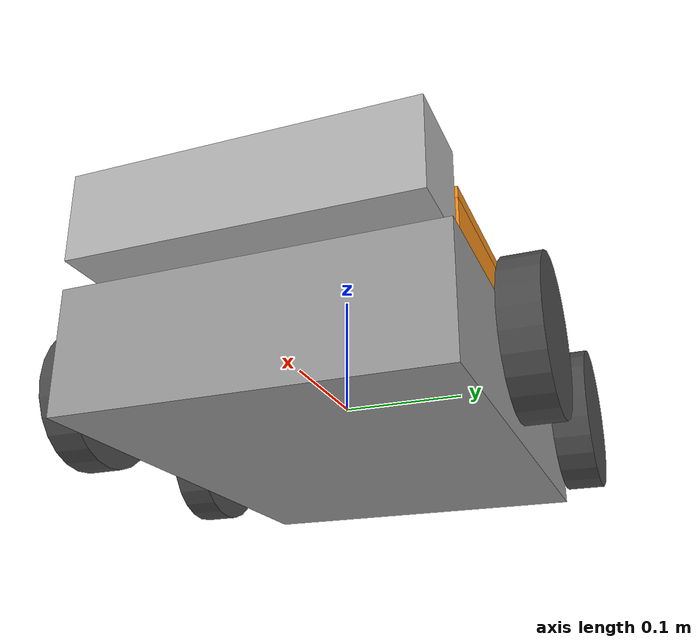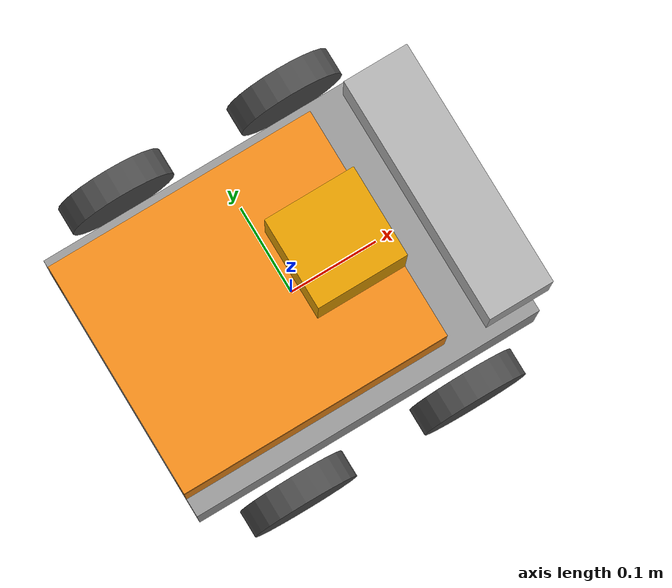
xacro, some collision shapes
<?xml version='1.0'?>

<robot name="my_robot" xmlns:xacro="http://www.ros.org/wiki/xacro">

  <xacro:include filename="$(find my_robot)/urdf/my_robot.gazebo" />

  <link name="robot_footprint"></link>

  <joint name="robot_footprint_joint" type="fixed">
    <origin xyz="0 0 0" rpy="0 0 0" />
    <parent link="robot_footprint"/>
    <child link="chassis" />
  </joint>

  <link name='chassis'>
    <pose>0 0 0.07 0 0 0</pose>

    <inertial>
      <mass value="30"/>
      <origin xyz="0.0 0 0" rpy=" 0 0 0"/>
      <inertia
          ixx="0.1" ixy="0" ixz="0"
          iyy="0.1" iyz="0"
          izz="0.1"
      />
    </inertial>

    <collision name='chassis'>
      <origin xyz="0 0 0" rpy=" 0 0 0"/>
      <geometry>
        <box size=".4 .3 .1"/>
      </geometry>
    </collision>

    <visual name='chassis'>
      <origin xyz="0 0 0" rpy=" 0 0 0"/>
      <geometry>
        <box size=".4 .3 .1"/>
      </geometry>
    </visual>

  </link>

  <link name='rack'>

    <collision name='rack'>
      <origin xyz="-0.05 0 0.13" rpy=" 0 0 0"/>
      <geometry>
        <box size=".3 .26 .01"/>
      </geometry>
    </collision>

    <visual name='rack'>
      <origin xyz="-0.05 0 0.13" rpy=" 0 0 0"/>
      <geometry>
        <box size=".3 .26 .01"/>
      </geometry>
    </visual>

    <collision name='rack'>
      <origin xyz="-0.05 0.12 0.09" rpy=" 0 0 0"/>
      <geometry>
        <box size=".3 .02 .07"/>
      </geometry>
    </collision>

    <visual name='rack'>
      <origin xyz="-0.05 0.12 0.09" rpy=" 0 0 0"/>
      <geometry>
        <box size=".3 .02 .07"/>
      </geometry>
    </visual>

    <collision name='rack'>
      <origin xyz="-0.05 -0.12 0.09" rpy=" 0 0 0"/>
      <geometry>
        <box size=".3 .02 .07"/>
      </geometry>
    </collision>

    <visual name='rack'>
      <origin xyz="-0.05 -0.12 0.09" rpy=" 0 0 0"/>
      <geometry>
        <box size=".3 .02 .07"/>
      </geometry>
    </visual>

  </link>

  <joint name="chassis_rack_joint" type="fixed">
    <origin xyz="0 0 0" rpy="0 0 0" />
    <parent link="chassis"/>
    <child link="rack" />
  </joint>

  <link name='back_left_wheel'>
    <pose>0 0 0 0 0 0</pose>

    <inertial>
      <mass value="5"/>
      <origin xyz="0 0 0" rpy=" 0 1.5707 1.5707"/>
      <inertia
          ixx="0.1" ixy="0" ixz="0"
          iyy="0.1" iyz="0"
          izz="0.1"
      />
    </inertial>

    <collision name='back_left_wheel'>
      <origin xyz="0 0 0" rpy=" 0 1.5707 1.5707"/>
      <geometry>
        <cylinder length="0.03" radius="0.06"/>
      </geometry>
    </collision>

    <visual name='back_left_wheel'>
      <origin xyz="0 0 0" rpy=" 0 1.5707 1.5707"/>
      <geometry>
        <cylinder length="0.03" radius="0.06"/>
      </geometry>
    </visual>

  </link>

  <link name='front_left_wheel'>
    <pose>0 0 0 0 0 0</pose>

    <inertial>
      <mass value="5"/>
      <origin xyz="0 0 0" rpy=" 0 1.5707 1.5707"/>
      <inertia
          ixx="0.1" ixy="0" ixz="0"
          iyy="0.1" iyz="0"
          izz="0.1"
      />
    </inertial>

    <collision name='front_left_wheel'>
      <origin xyz="0 0 0" rpy=" 0 1.5707 1.5707"/>
      <geometry>
        <cylinder length="0.03" radius="0.06"/>
      </geometry>
    </collision>

    <visual name='front_left_wheel'>
      <origin xyz="0 0 0" rpy=" 0 1.5707 1.5707"/>
      <geometry>
        <cylinder length="0.03" radius="0.06"/>
      </geometry>
    </visual>

  </link>

  <link name='back_right_wheel'>
    <pose>0 0 0 0 0 0</pose>

    <inertial>
      <mass value="5"/>
      <origin xyz="0 0 0" rpy=" 0 1.5707 1.5707"/>
      <inertia
          ixx="0.1" ixy="0" ixz="0"
          iyy="0.1" iyz="0"
          izz="0.1"
      />
    </inertial>

    <collision name='back_right_wheel'>
      <origin xyz="0 0 0" rpy=" 0 1.5707 1.5707"/>
      <geometry>
        <cylinder length="0.03" radius="0.06"/>
      </geometry>
    </collision>

    <visual name='back_right_wheel'>
      <origin xyz="0 0 0" rpy=" 0 1.5707 1.5707"/>
      <geometry>
        <cylinder length="0.03" radius="0.06"/>
      </geometry>
    </visual>

  </link>

  <link name='front_right_wheel'>
    <pose>0 0 0 0 0 0</pose>

    <inertial>
      <mass value="5"/>
      <origin xyz="0 0 0" rpy=" 0 1.5707 1.5707"/>
      <inertia
          ixx="0.1" ixy="0" ixz="0"
          iyy="0.1" iyz="0"
          izz="0.1"
      />
    </inertial>

    <collision name='front_right_wheel'>
      <origin xyz="0 0 0" rpy=" 0 1.5707 1.5707"/>
      <geometry>
        <cylinder length="0.03" radius="0.06"/>
      </geometry>
    </collision>

    <visual name='front_right_wheel'>
      <origin xyz="0 0 0" rpy=" 0 1.5707 1.5707"/>
      <geometry>
        <cylinder length="0.03" radius="0.06"/>
      </geometry>
    </visual>

  </link>

  <joint type="continuous" name="back_left_wheel_joint">
    <origin xyz="-0.1 0.18 0" rpy="0 0 0"/>
    <child link="back_left_wheel"/>
    <parent link="chassis"/>
    <axis xyz="0 1 0" rpy="0 0 0"/>
    <limit effort="10000" velocity="1000"/>
    <dynamics damping="1.0" friction="1.0"/>
  </joint>

  <joint type="continuous" name="front_left_wheel_joint">
    <origin xyz="0.1 0.18 0" rpy="0 0 0"/>
    <child link="front_left_wheel"/>
    <parent link="chassis"/>
    <axis xyz="0 1 0" rpy="0 0 0"/>
    <limit effort="10000" velocity="1000"/>
    <dynamics damping="1.0" friction="1.0"/>
  </joint>

  <joint type="continuous" name="back_right_wheel_joint">
    <origin xyz="-0.1 -0.18 0" rpy="0 0 0"/>
    <child link="back_right_wheel"/>
    <parent link="chassis"/>
    <axis xyz="0 1 0" rpy="0 0 0"/>
    <limit effort="10000" velocity="1000"/>
    <dynamics damping="1.0" friction="1.0"/>
  </joint>

  <joint type="continuous" name="front_right_wheel_joint">
    <origin xyz="0.1 -0.18 0" rpy="0 0 0"/>
    <child link="front_right_wheel"/>
    <parent link="chassis"/>
    <axis xyz="0 1 0" rpy="0 0 0"/>
    <limit effort="10000" velocity="1000"/>
    <dynamics damping="1.0" friction="1.0"/>
  </joint>

  <link name='camera'>
    <pose>0 0 0 0 0 0</pose>

    <inertial>
      <mass value="0.1"/>
      <origin xyz="0.05 0.05 0.05" rpy=" 0 0 0"/>
      <inertia
          ixx="1e-6" ixy="0" ixz="0"
          iyy="1e-6" iyz="0"
          izz="1e-6"
      />
    </inertial>

    <collision name='camera'>
      <origin xyz="0 0 0" rpy=" 0 0 0"/>
      <geometry>
        <box size="0.073 0.276 0.072"/>
      </geometry>
    </collision>

    <visual name='camera'>
      <origin xyz="0 0 0" rpy=" 0 0 0"/>
      <geometry>
        <mesh filename="package://my_robot/meshes/kinect.dae"/>
      </geometry>
    </visual>

  </link>

  <joint type="fixed" name="camera_joint">
    <origin xyz="0.18 0 0.1" rpy="0 0 0"/>
    <child link="camera"/>
    <parent link="chassis"/>
    <axis xyz="0 1 0" rpy="0 0 0"/>
  </joint>

  <link name='hokuyo'>
    <pose>0 0 0 0 0 0</pose>

    <inertial>
      <mass value="1e-5"/>
      <origin xyz="0 0 0" rpy=" 0 0 0"/>
      <inertia
          ixx="1e-6" ixy="0" ixz="0"
          iyy="1e-6" iyz="0"
          izz="1e-6"
      />
    </inertial>

    <collision name='hokuyo'>
      <origin xyz="0 0 0" rpy=" 0 0 0"/>
      <geometry>
        <box size="0.1 0.1 0.1"/>
      </geometry>
    </collision>

    <visual name='hokuyo'>
      <origin xyz="0 0 0" rpy=" 0 0 0"/>
      <geometry>
        <mesh filename="package://my_robot/meshes/hokuyo.dae"/>
      </geometry>
    </visual>

  </link>

  <joint type="fixed" name="hokuyo_joint">
    <origin xyz="0.05 0 0.17" rpy="0 0 0"/>
    <child link="hokuyo"/>
    <parent link="chassis"/>
    <axis xyz="0 1 0" rpy="0 0 0"/>
  </joint>

  <gazebo reference="chassis">
    <material>Gazebo/GreyTransparent</material>
  </gazebo>

  <gazebo reference="rack">
    <material>Gazebo/Orange</material>
  </gazebo>

  <gazebo reference="back_left_wheel">
    <material>Gazebo/DarkGrey</material>
  </gazebo>

  <gazebo reference="front_left_wheel">
    <material>Gazebo/DarkGrey</material>
  </gazebo>
  <gazebo reference="back_right_wheel">
    <material>Gazebo/DarkGrey</material>
  </gazebo>

  <gazebo reference="front_right_wheel">
    <material>Gazebo/DarkGrey</material>
  </gazebo>

</robot>
